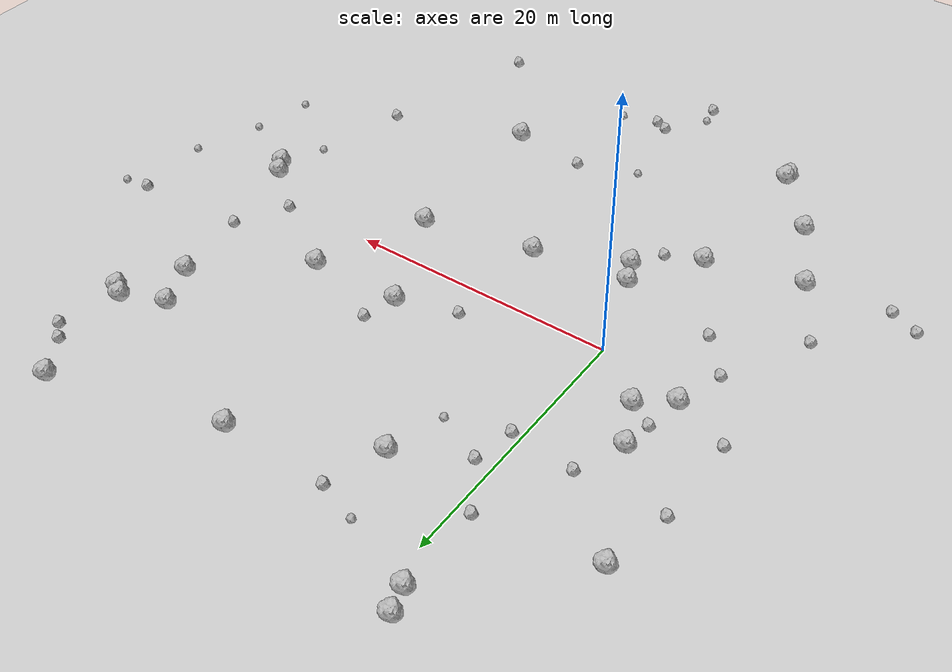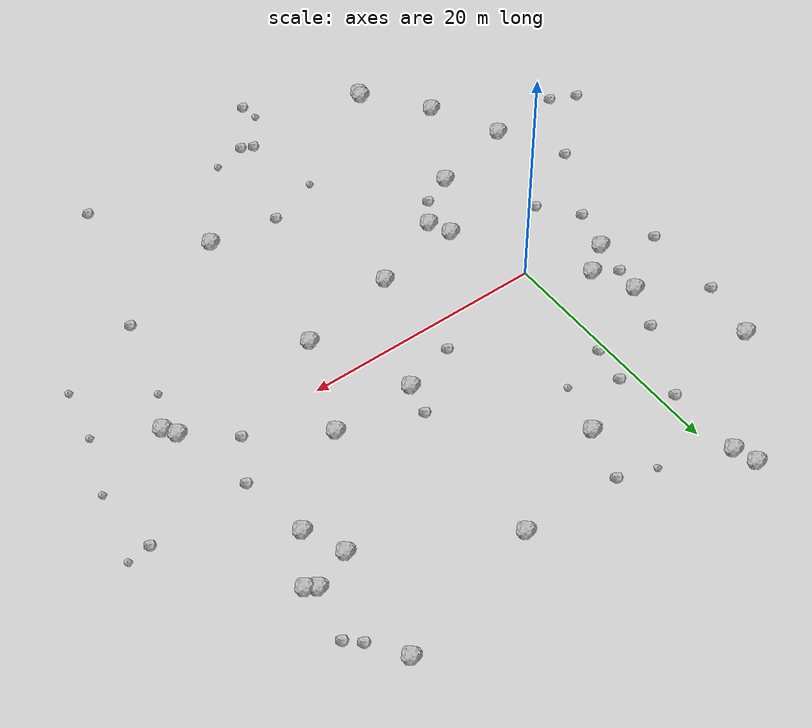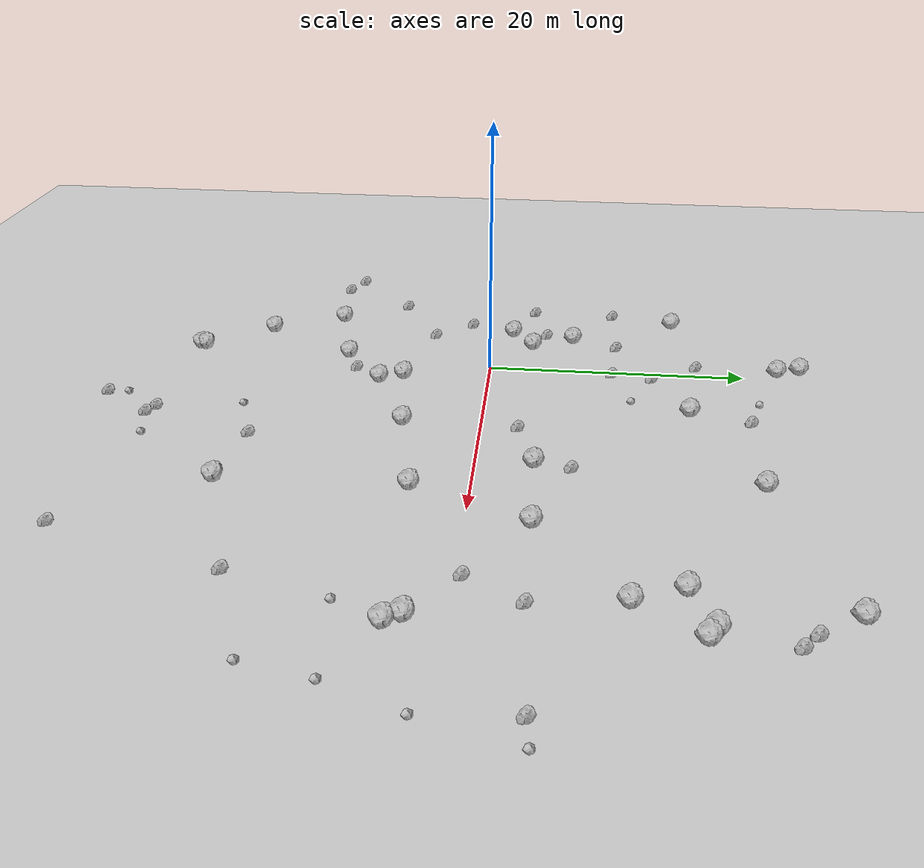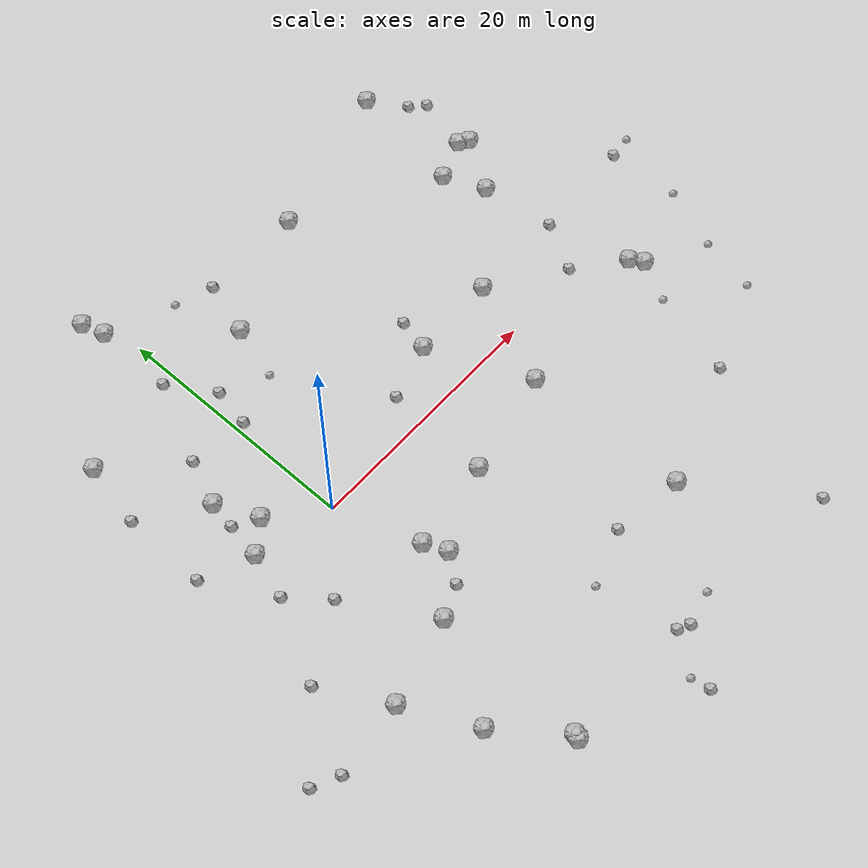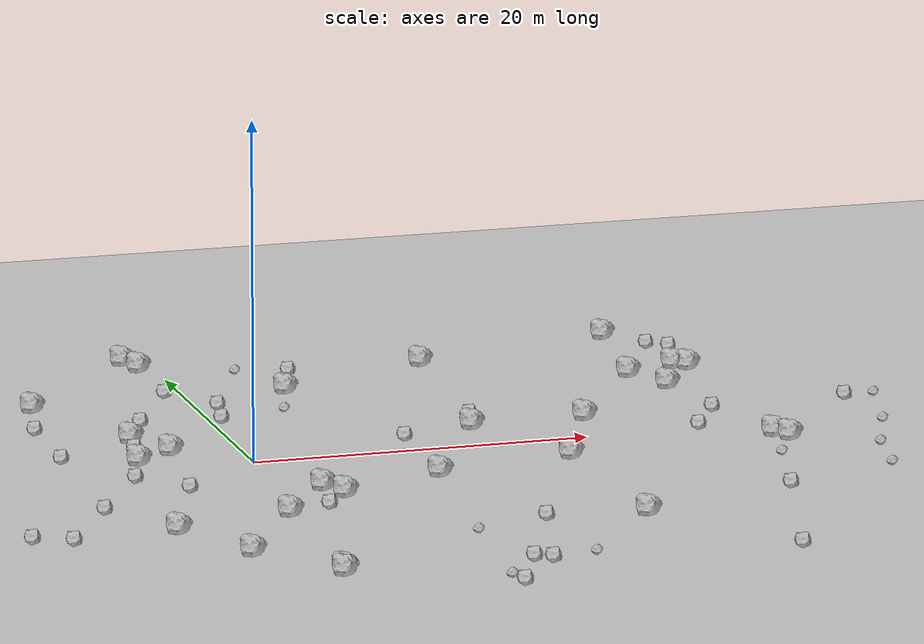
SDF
<sdf version="1.6">
 <world name="default">
  <include><uri>model://custom_ground</uri></include>
  <include><uri>model://sun</uri></include>
  <model name="rock1_0_0">
   <include><uri>model://rock1</uri><pose>30.813421630112558 14.052619934679427 0.5 0 0 0</pose></include>
  </model>
  <model name="rock1_0_1">
   <include><uri>model://rock1</uri><pose>31.263005932532955 -3.555081857459758 0.5 0 0 0</pose></include>
  </model>
  <model name="rock1_0_2">
   <include><uri>model://rock1</uri><pose>3.062560842775433 -8.579126349104055 0.5 0 0 0</pose></include>
  </model>
  <model name="rock1_0_3">
   <include><uri>model://rock1</uri><pose>2.2622036083634214 -6.75873303845411 0.5 0 0 0</pose></include>
  </model>
  <model name="rock1_0_4">
   <include><uri>model://rock1</uri><pose>-9.320052359139009 15.060780066633328 0.5 0 0 0</pose></include>
  </model>
  <model name="rock1_0_5">
   <include><uri>model://rock1</uri><pose>30.041773885630953 14.564124414637838 0.5 0 0 0</pose></include>
  </model>
  <model name="rock1_0_6">
   <include><uri>model://rock1</uri><pose>-7.956359113545055 -13.569586449923086 0.5 0 0 0</pose></include>
  </model>
  <model name="rock1_0_7">
   <include><uri>model://rock1</uri><pose>18.204109501527142 -17.223239774890164 0.5 0 0 0</pose></include>
  </model>
  <model name="rock1_0_8">
   <include><uri>model://rock1</uri><pose>-0.916840459110869 22.74541993563553 0.5 0 0 0</pose></include>
  </model>
  <model name="rock1_0_9">
   <include><uri>model://rock1</uri><pose>-5.530643240768178 6.582888638079616 0.5 0 0 0</pose></include>
  </model>
  <model name="rock1_0_10">
   <include><uri>model://rock1</uri><pose>21.21864268992362 4.180547698002499 0.5 0 0 0</pose></include>
  </model>
  <model name="rock1_0_11">
   <include><uri>model://rock1</uri><pose>15.686487209626158 19.412198831631322 0.5 0 0 0</pose></include>
  </model>
  <model name="rock1_0_12">
   <include><uri>model://rock1</uri><pose>-5.223978426582089 -19.191512609234273 0.5 0 0 0</pose></include>
  </model>
  <model name="rock1_0_13">
   <include><uri>model://rock1</uri><pose>-1.3845227261867734 -24.063631861825083 0.5 0 0 0</pose></include>
  </model>
  <model name="rock1_0_14">
   <include><uri>model://rock1</uri><pose>30.615616794563678 -2.5062116974249733 0.5 0 0 0</pose></include>
  </model>
  <model name="rock1_0_15">
   <include><uri>model://rock1</uri><pose>17.81580066527915 -4.049925216338039 0.5 0 0 0</pose></include>
  </model>
  <model name="rock1_0_16">
   <include><uri>model://rock1</uri><pose>-1.4753969847542585 24.58261571840182 0.5 0 0 0</pose></include>
  </model>
  <model name="rock1_0_17">
   <include><uri>model://rock1</uri><pose>-1.032616383749037 -11.770431630259203 0.5 0 0 0</pose></include>
  </model>
  <model name="rock1_0_18">
   <include><uri>model://rock1</uri><pose>6.151277521530581 15.302656047938179 0.5 0 0 0</pose></include>
  </model>
  <model name="rock1_0_19">
   <include><uri>model://rock1</uri><pose>28.2217998324001 10.012683567531681 0.5 0 0 0</pose></include>
  </model>
  <model name="rock1_0_20">
   <include><uri>model://rock1</uri><pose>-4.0237681045148666 3.2533593006612023 0.5 0 0 0</pose></include>
  </model>
  <model name="rock1_0_21">
   <include><uri>model://rock1</uri><pose>28.212092442642458 22.76412446825747 0.5 0 0 0</pose></include>
  </model>
  <model name="rock1_0_22">
   <include><uri>model://rock1</uri><pose>9.474128286313903 -5.76423325892344 0.5 0 0 0</pose></include>
  </model>
  <model name="rock1_0_23">
   <include><uri>model://rock1</uri><pose>14.293177001033527 4.044906203207077 0.5 0 0 0</pose></include>
  </model>
  <model name="rock1_0_24">
   <include><uri>model://rock1</uri><pose>-1.4699138029912042 -24.45377630414687 0.5 0 0 0</pose></include>
  </model>
  <model name="rock1_0_25">
   <include><uri>model://rock1</uri><pose>26.836041346514016 13.288668211996658 0.5 0 0 0</pose></include>
  </model>
  <model name="rock1_0_26">
   <include><uri>model://rock1</uri><pose>-6.357755071895866 1.5034511216597828 0.5 0 0 0</pose></include>
  </model>
  <model name="rock2_0_0">
   <include><uri>model://rock2</uri><pose>7.457265138114209 19.64313406274166 0.3 0 0 0</pose></include>
  </model>
  <model name="rock2_0_1">
   <include><uri>model://rock2</uri><pose>-10.449645389333554 10.03415859368021 0.3 0 0 0</pose></include>
  </model>
  <model name="rock2_0_2">
   <include><uri>model://rock2</uri><pose>0.6856317642207372 9.700149326047445 0.3 0 0 0</pose></include>
  </model>
  <model name="rock2_0_3">
   <include><uri>model://rock2</uri><pose>1.274047186400228 12.782362376001927 0.3 0 0 0</pose></include>
  </model>
  <model name="rock2_0_4">
   <include><uri>model://rock2</uri><pose>37.389564937839125 4.64477223881218 0.3 0 0 0</pose></include>
  </model>
  <model name="rock2_0_5">
   <include><uri>model://rock2</uri><pose>-10.885386029139939 -8.27051394484615 0.3 0 0 0</pose></include>
  </model>
  <model name="rock2_0_6">
   <include><uri>model://rock2</uri><pose>9.789555691522093 2.7271717221069167 0.3 0 0 0</pose></include>
  </model>
  <model name="rock2_0_7">
   <include><uri>model://rock2</uri><pose>-5.9386340824718715 4.389578769066013 0.3 0 0 0</pose></include>
  </model>
  <model name="rock2_0_8">
   <include><uri>model://rock2</uri><pose>29.00292569092798 4.16580761332979 0.3 0 0 0</pose></include>
  </model>
  <model name="rock2_0_9">
   <include><uri>model://rock2</uri><pose>-4.0879280996738405 10.165175052225202 0.3 0 0 0</pose></include>
  </model>
  <model name="rock2_0_10">
   <include><uri>model://rock2</uri><pose>7.35958634106931 -28.929308833988575 0.3 0 0 0</pose></include>
  </model>
  <model name="rock2_0_11">
   <include><uri>model://rock2</uri><pose>26.934992649957344 0.4181316352093276 0.3 0 0 0</pose></include>
  </model>
  <model name="rock2_0_12">
   <include><uri>model://rock2</uri><pose>9.261285946866945 -24.43491010309925 0.3 0 0 0</pose></include>
  </model>
  <model name="rock2_0_13">
   <include><uri>model://rock2</uri><pose>31.13473867604972 18.952731467859046 0.3 0 0 0</pose></include>
  </model>
  <model name="rock2_0_14">
   <include><uri>model://rock2</uri><pose>14.861446618989234 6.6265404671307735 0.3 0 0 0</pose></include>
  </model>
  <model name="rock2_0_15">
   <include><uri>model://rock2</uri><pose>-16.248170548353567 -13.205190755553918 0.3 0 0 0</pose></include>
  </model>
  <model name="rock2_0_16">
   <include><uri>model://rock2</uri><pose>10.20335847018831 -24.910720310295567 0.3 0 0 0</pose></include>
  </model>
  <model name="rock2_0_17">
   <include><uri>model://rock2</uri><pose>24.27855187737 -25.908616217516958 0.3 0 0 0</pose></include>
  </model>
  <model name="rock2_0_18">
   <include><uri>model://rock2</uri><pose>30.036504199002692 19.96319697527111 0.3 0 0 0</pose></include>
  </model>
  <model name="rock2_0_19">
   <include><uri>model://rock2</uri><pose>-10.552684495686599 3.2509864137536084 0.3 0 0 0</pose></include>
  </model>
  <model name="rock2_0_20">
   <include><uri>model://rock2</uri><pose>1.5026766648205054 -10.644917214612867 0.3 0 0 0</pose></include>
  </model>
  <model name="rock2_0_21">
   <include><uri>model://rock2</uri><pose>-5.102308244120557 -5.020755405723573 0.3 0 0 0</pose></include>
  </model>
  <model name="rock2_0_22">
   <include><uri>model://rock2</uri><pose>27.801510127597815 -13.634177054286557 0.3 0 0 0</pose></include>
  </model>
  <model name="rock2_0_23">
   <include><uri>model://rock2</uri><pose>-1.0307453298833096 16.399666090407692 0.3 0 0 0</pose></include>
  </model>
  <model name="rock2_0_24">
   <include><uri>model://rock2</uri><pose>-14.120143500861062 -14.201679741017287 0.3 0 0 0</pose></include>
  </model>
  <model name="rock2_0_25">
   <include><uri>model://rock2</uri><pose>12.441714780987823 -16.438775164553693 0.3 0 0 0</pose></include>
  </model>
  <model name="rock2_0_26">
   <include><uri>model://rock2</uri><pose>-7.522201961812662 -2.0635823749856 0.3 0 0 0</pose></include>
  </model>
  <model name="rock3_0_0">
   <include><uri>model://rock3</uri><pose>37.74033737111994 -1.1714888420597873 0.2 0 0 0</pose></include>
  </model>
  <model name="rock3_0_1">
   <include><uri>model://rock3</uri><pose>29.632612273078678 -6.725521163373955 0.2 0 0 0</pose></include>
  </model>
  <model name="rock3_0_2">
   <include><uri>model://rock3</uri><pose>39.290701421273354 4.848428856288876 0.2 0 0 0</pose></include>
  </model>
  <model name="rock3_0_3">
   <include><uri>model://rock3</uri><pose>35.85730598664391 -6.148956230768583 0.2 0 0 0</pose></include>
  </model>
  <model name="rock3_0_4">
   <include><uri>model://rock3</uri><pose>4.4393999599260106 20.641387454248154 0.2 0 0 0</pose></include>
  </model>
  <model name="rock3_0_5">
   <include><uri>model://rock3</uri><pose>7.081327620108183 -27.434144734043834 0.2 0 0 0</pose></include>
  </model>
  <model name="rock3_0_6">
   <include><uri>model://rock3</uri><pose>34.93505838425007 -10.70710921681005 0.2 0 0 0</pose></include>
  </model>
  <model name="rock3_0_7">
   <include><uri>model://rock3</uri><pose>12.912053414443562 -24.25418554666139 0.2 0 0 0</pose></include>
  </model>
  <model name="rock3_0_8">
   <include><uri>model://rock3</uri><pose>7.995243414619182 -18.105651117027385 0.2 0 0 0</pose></include>
  </model>
  <model name="rock3_0_9">
   <include><uri>model://rock3</uri><pose>4.856740565379695 11.02301868584452 0.2 0 0 0</pose></include>
  </model>
 </world>
</sdf>
